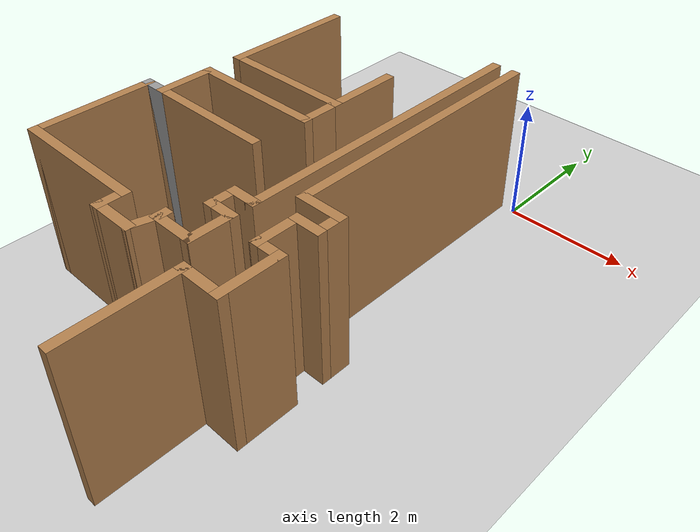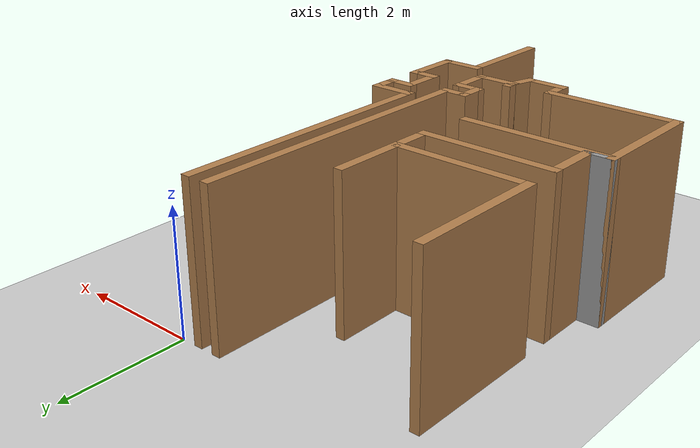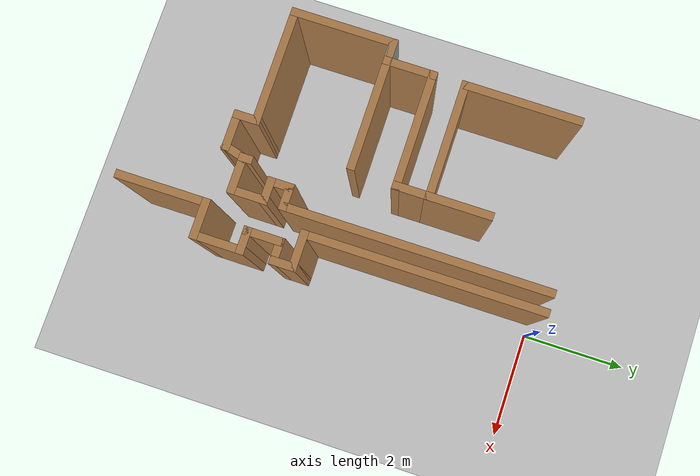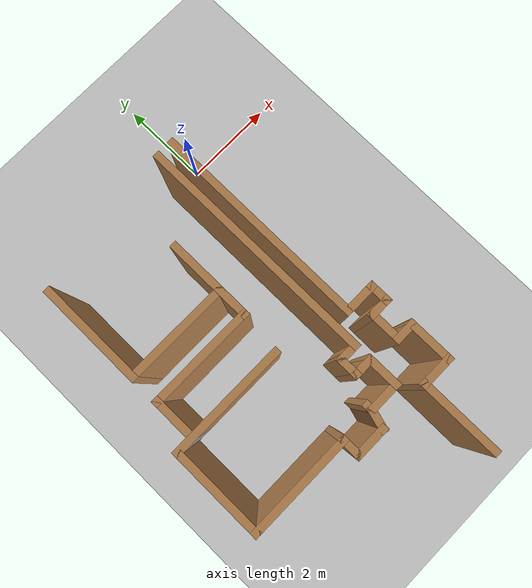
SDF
<sdf version="1.6">
 <world name="default">
  <model name="ground_plane">
   <static>1</static>
   <link name="link">
    <collision name="collision">
     <geometry><plane><normal>0 0 1</normal><size>100 100</size></plane></geometry>
     <surface><friction><ode><mu>100</mu><mu2>50</mu2></ode></friction></surface>
    </collision>
    <visual name="visual">
     <cast_shadows>0</cast_shadows>
     <geometry><plane><normal>0 0 1</normal><size>100 100</size></plane></geometry>
     <material>
      <script><uri>file://media/materials/scripts/gazebo.material</uri><name>Gazebo/Grey</name></script>
     </material>
    </visual>
   </link>
  </model>
  <model name="map_42">
   <link name="Wall_113">
    <pose>-2.425 -2.94031 0 0 -0 0</pose>
    <visual name="Wall_113_Visual">
     <pose>0 0 1.25 0 -0 0</pose>
     <geometry><box><size>2.5 0.15 2.5</size></box></geometry>
     <material>
      <script><uri>file://media/materials/scripts/gazebo.material</uri><name>Gazebo/Wood</name></script>
      <ambient>1 1 1 1</ambient>
      <shader type="pixel"/>
     </material>
     <meta><layer>0</layer></meta>
    </visual>
    <collision name="Wall_113_Collision">
     <pose>0 0 1.25 0 -0 0</pose>
     <geometry><box><size>2.5 0.15 2.5</size></box></geometry>
     <surface>
      <friction>
       <ode><mu>1</mu><mu2>1</mu2><fdir1>0 0 0</fdir1><slip1>0</slip1><slip2>0</slip2></ode>
       <torsional>
        <coefficient>1</coefficient>
        <patch_radius>0</patch_radius>
        <surface_radius>0</surface_radius>
        <use_patch_radius>1</use_patch_radius>
        <ode><slip>0</slip></ode>
       </torsional>
      </friction>
      <bounce><restitution_coefficient>0</restitution_coefficient><threshold>1e+06</threshold></bounce>
      <contact>
       <collide_without_contact>0</collide_without_contact>
       <collide_without_contact_bitmask>1</collide_without_contact_bitmask>
       <collide_bitmask>1</collide_bitmask>
       <ode>
        <soft_cfm>0</soft_cfm>
        <soft_erp>0.2</soft_erp>
        <kp>1e+13</kp>
        <kd>1</kd>
        <max_vel>0.01</max_vel>
        <min_depth>0</min_depth>
       </ode>
       <bullet>
        <split_impulse>1</split_impulse>
        <split_impulse_penetration_threshold>-0.01</split_impulse_penetration_threshold>
        <soft_cfm>0</soft_cfm>
        <soft_erp>0.2</soft_erp>
        <kp>1e+13</kp>
        <kd>1</kd>
       </bullet>
      </contact>
     </surface>
    </collision>
   </link>
   <link name="Wall_17">
    <pose>-3.25 -0.440313 0 0 0 -1.5708</pose>
    <visual name="Wall_17_Visual">
     <pose>0 0 1.25 0 -0 0</pose>
     <geometry><box><size>2.25 0.15 2.5</size></box></geometry>
     <material>
      <script><uri>file://media/materials/scripts/gazebo.material</uri><name>Gazebo/Wood</name></script>
      <ambient>1 1 1 1</ambient>
      <shader type="pixel"/>
     </material>
     <meta><layer>0</layer></meta>
    </visual>
    <collision name="Wall_17_Collision">
     <pose>0 0 1.25 0 -0 0</pose>
     <geometry><box><size>2.25 0.15 2.5</size></box></geometry>
     <surface>
      <friction>
       <ode><mu>1</mu><mu2>1</mu2><fdir1>0 0 0</fdir1><slip1>0</slip1><slip2>0</slip2></ode>
       <torsional>
        <coefficient>1</coefficient>
        <patch_radius>0</patch_radius>
        <surface_radius>0</surface_radius>
        <use_patch_radius>1</use_patch_radius>
        <ode><slip>0</slip></ode>
       </torsional>
      </friction>
      <bounce><restitution_coefficient>0</restitution_coefficient><threshold>1e+06</threshold></bounce>
      <contact>
       <collide_without_contact>0</collide_without_contact>
       <collide_without_contact_bitmask>1</collide_without_contact_bitmask>
       <collide_bitmask>1</collide_bitmask>
       <ode>
        <soft_cfm>0</soft_cfm>
        <soft_erp>0.2</soft_erp>
        <kp>1e+13</kp>
        <kd>1</kd>
        <max_vel>0.01</max_vel>
        <min_depth>0</min_depth>
       </ode>
       <bullet>
        <split_impulse>1</split_impulse>
        <split_impulse_penetration_threshold>-0.01</split_impulse_penetration_threshold>
        <soft_cfm>0</soft_cfm>
        <soft_erp>0.2</soft_erp>
        <kp>1e+13</kp>
        <kd>1</kd>
       </bullet>
      </contact>
     </surface>
    </collision>
   </link>
   <link name="Wall_18">
    <pose>-2.2 -1.49031 0 0 -0 0</pose>
    <visual name="Wall_18_Visual">
     <pose>0 0 1.25 0 -0 0</pose>
     <geometry><box><size>2.25 0.15 2.5</size></box></geometry>
     <material>
      <script><uri>file://media/materials/scripts/gazebo.material</uri><name>Gazebo/Wood</name></script>
      <ambient>1 1 1 1</ambient>
      <shader type="pixel"/>
     </material>
     <meta><layer>0</layer></meta>
    </visual>
    <collision name="Wall_18_Collision">
     <pose>0 0 1.25 0 -0 0</pose>
     <geometry><box><size>2.25 0.15 2.5</size></box></geometry>
     <surface>
      <friction>
       <ode><mu>1</mu><mu2>1</mu2><fdir1>0 0 0</fdir1><slip1>0</slip1><slip2>0</slip2></ode>
       <torsional>
        <coefficient>1</coefficient>
        <patch_radius>0</patch_radius>
        <surface_radius>0</surface_radius>
        <use_patch_radius>1</use_patch_radius>
        <ode><slip>0</slip></ode>
       </torsional>
      </friction>
      <bounce><restitution_coefficient>0</restitution_coefficient><threshold>1e+06</threshold></bounce>
      <contact>
       <collide_without_contact>0</collide_without_contact>
       <collide_without_contact_bitmask>1</collide_without_contact_bitmask>
       <collide_bitmask>1</collide_bitmask>
       <ode>
        <soft_cfm>0</soft_cfm>
        <soft_erp>0.2</soft_erp>
        <kp>1e+13</kp>
        <kd>1</kd>
        <max_vel>0.01</max_vel>
        <min_depth>0</min_depth>
       </ode>
       <bullet>
        <split_impulse>1</split_impulse>
        <split_impulse_penetration_threshold>-0.01</split_impulse_penetration_threshold>
        <soft_cfm>0</soft_cfm>
        <soft_erp>0.2</soft_erp>
        <kp>1e+13</kp>
        <kd>1</kd>
       </bullet>
      </contact>
     </surface>
    </collision>
   </link>
   <link name="Wall_19">
    <pose>-1.15 -0.940313 0 0 -0 1.5708</pose>
    <visual name="Wall_19_Visual">
     <pose>0 0 1.25 0 -0 0</pose>
     <geometry><box><size>1.25 0.15 2.5</size></box></geometry>
     <material>
      <script><uri>file://media/materials/scripts/gazebo.material</uri><name>Gazebo/Wood</name></script>
      <ambient>1 1 1 1</ambient>
      <shader type="pixel"/>
     </material>
     <meta><layer>0</layer></meta>
    </visual>
    <collision name="Wall_19_Collision">
     <pose>0 0 1.25 0 -0 0</pose>
     <geometry><box><size>1.25 0.15 2.5</size></box></geometry>
     <surface>
      <friction>
       <ode><mu>1</mu><mu2>1</mu2><fdir1>0 0 0</fdir1><slip1>0</slip1><slip2>0</slip2></ode>
       <torsional>
        <coefficient>1</coefficient>
        <patch_radius>0</patch_radius>
        <surface_radius>0</surface_radius>
        <use_patch_radius>1</use_patch_radius>
        <ode><slip>0</slip></ode>
       </torsional>
      </friction>
      <bounce><restitution_coefficient>0</restitution_coefficient><threshold>1e+06</threshold></bounce>
      <contact>
       <collide_without_contact>0</collide_without_contact>
       <collide_without_contact_bitmask>1</collide_without_contact_bitmask>
       <collide_bitmask>1</collide_bitmask>
       <ode>
        <soft_cfm>0</soft_cfm>
        <soft_erp>0.2</soft_erp>
        <kp>1e+13</kp>
        <kd>1</kd>
        <max_vel>0.01</max_vel>
        <min_depth>0</min_depth>
       </ode>
       <bullet>
        <split_impulse>1</split_impulse>
        <split_impulse_penetration_threshold>-0.01</split_impulse_penetration_threshold>
        <soft_cfm>0</soft_cfm>
        <soft_erp>0.2</soft_erp>
        <kp>1e+13</kp>
        <kd>1</kd>
       </bullet>
      </contact>
     </surface>
    </collision>
   </link>
   <link name="Wall_21">
    <pose>-1.15 -1.79031 0 0 0 -1.5708</pose>
    <visual name="Wall_21_Visual">
     <pose>0 0 1.25 0 -0 0</pose>
     <geometry><box><size>0.75 0.15 2.5</size></box></geometry>
     <material>
      <script><uri>file://media/materials/scripts/gazebo.material</uri><name>Gazebo/Wood</name></script>
      <ambient>1 1 1 1</ambient>
      <shader type="pixel"/>
     </material>
     <meta><layer>0</layer></meta>
    </visual>
    <collision name="Wall_21_Collision">
     <pose>0 0 1.25 0 -0 0</pose>
     <geometry><box><size>0.75 0.15 2.5</size></box></geometry>
     <surface>
      <friction>
       <ode><mu>1</mu><mu2>1</mu2><fdir1>0 0 0</fdir1><slip1>0</slip1><slip2>0</slip2></ode>
       <torsional>
        <coefficient>1</coefficient>
        <patch_radius>0</patch_radius>
        <surface_radius>0</surface_radius>
        <use_patch_radius>1</use_patch_radius>
        <ode><slip>0</slip></ode>
       </torsional>
      </friction>
      <bounce><restitution_coefficient>0</restitution_coefficient><threshold>1e+06</threshold></bounce>
      <contact>
       <collide_without_contact>0</collide_without_contact>
       <collide_without_contact_bitmask>1</collide_without_contact_bitmask>
       <collide_bitmask>1</collide_bitmask>
       <ode>
        <soft_cfm>0</soft_cfm>
        <soft_erp>0.2</soft_erp>
        <kp>1e+13</kp>
        <kd>1</kd>
        <max_vel>0.01</max_vel>
        <min_depth>0</min_depth>
       </ode>
       <bullet>
        <split_impulse>1</split_impulse>
        <split_impulse_penetration_threshold>-0.01</split_impulse_penetration_threshold>
        <soft_cfm>0</soft_cfm>
        <soft_erp>0.2</soft_erp>
        <kp>1e+13</kp>
        <kd>1</kd>
       </bullet>
      </contact>
     </surface>
    </collision>
   </link>
   <link name="Wall_22">
    <pose>-2.2 -2.09031 0 0 -0 3.14159</pose>
    <visual name="Wall_22_Visual">
     <pose>0 0 1.25 0 -0 0</pose>
     <geometry><box><size>2.25 0.15 2.5</size></box></geometry>
     <material>
      <script><uri>file://media/materials/scripts/gazebo.material</uri><name>Gazebo/Wood</name></script>
      <ambient>1 1 1 1</ambient>
      <shader type="pixel"/>
     </material>
     <meta><layer>0</layer></meta>
    </visual>
    <collision name="Wall_22_Collision">
     <pose>0 0 1.25 0 -0 0</pose>
     <geometry><box><size>2.25 0.15 2.5</size></box></geometry>
     <surface>
      <friction>
       <ode><mu>1</mu><mu2>1</mu2><fdir1>0 0 0</fdir1><slip1>0</slip1><slip2>0</slip2></ode>
       <torsional>
        <coefficient>1</coefficient>
        <patch_radius>0</patch_radius>
        <surface_radius>0</surface_radius>
        <use_patch_radius>1</use_patch_radius>
        <ode><slip>0</slip></ode>
       </torsional>
      </friction>
      <bounce><restitution_coefficient>0</restitution_coefficient><threshold>1e+06</threshold></bounce>
      <contact>
       <collide_without_contact>0</collide_without_contact>
       <collide_without_contact_bitmask>1</collide_without_contact_bitmask>
       <collide_bitmask>1</collide_bitmask>
       <ode>
        <soft_cfm>0</soft_cfm>
        <soft_erp>0.2</soft_erp>
        <kp>1e+13</kp>
        <kd>1</kd>
        <max_vel>0.01</max_vel>
        <min_depth>0</min_depth>
       </ode>
       <bullet>
        <split_impulse>1</split_impulse>
        <split_impulse_penetration_threshold>-0.01</split_impulse_penetration_threshold>
        <soft_cfm>0</soft_cfm>
        <soft_erp>0.2</soft_erp>
        <kp>1e+13</kp>
        <kd>1</kd>
       </bullet>
      </contact>
     </surface>
    </collision>
   </link>
   <link name="Wall_23">
    <pose>-3.25 -2.51531 0 0 0 -1.5708</pose>
    <visual name="Wall_23_Visual">
     <pose>0 0 1.25 0 -0 0</pose>
     <geometry><box><size>1 0.15 2.5</size></box></geometry>
     <material>
      <script><uri>file://media/materials/scripts/gazebo.material</uri><name>Gazebo/Wood</name></script>
      <ambient>1 1 1 1</ambient>
      <shader type="pixel"/>
     </material>
     <meta><layer>0</layer></meta>
    </visual>
    <collision name="Wall_23_Collision">
     <pose>0 0 1.25 0 -0 0</pose>
     <geometry><box><size>1 0.15 2.5</size></box></geometry>
     <surface>
      <friction>
       <ode><mu>1</mu><mu2>1</mu2><fdir1>0 0 0</fdir1><slip1>0</slip1><slip2>0</slip2></ode>
       <torsional>
        <coefficient>1</coefficient>
        <patch_radius>0</patch_radius>
        <surface_radius>0</surface_radius>
        <use_patch_radius>1</use_patch_radius>
        <ode><slip>0</slip></ode>
       </torsional>
      </friction>
      <bounce><restitution_coefficient>0</restitution_coefficient><threshold>1e+06</threshold></bounce>
      <contact>
       <collide_without_contact>0</collide_without_contact>
       <collide_without_contact_bitmask>1</collide_without_contact_bitmask>
       <collide_bitmask>1</collide_bitmask>
       <ode>
        <soft_cfm>0</soft_cfm>
        <soft_erp>0.2</soft_erp>
        <kp>1e+13</kp>
        <kd>1</kd>
        <max_vel>0.01</max_vel>
        <min_depth>0</min_depth>
       </ode>
       <bullet>
        <split_impulse>1</split_impulse>
        <split_impulse_penetration_threshold>-0.01</split_impulse_penetration_threshold>
        <soft_cfm>0</soft_cfm>
        <soft_erp>0.2</soft_erp>
        <kp>1e+13</kp>
        <kd>1</kd>
       </bullet>
      </contact>
     </surface>
    </collision>
   </link>
   <link name="Wall_33">
    <pose>-0.8 -4.74031 0 0 -0 1.5708</pose>
    <visual name="Wall_33_Visual">
     <pose>0 0 1.25 0 -0 0</pose>
     <geometry><box><size>0.25 0.15 2.5</size></box></geometry>
     <material>
      <script><uri>file://media/materials/scripts/gazebo.material</uri><name>Gazebo/Wood</name></script>
      <ambient>1 1 1 1</ambient>
      <shader type="pixel"/>
     </material>
     <meta><layer>0</layer></meta>
    </visual>
    <collision name="Wall_33_Collision">
     <pose>0 0 1.25 0 -0 0</pose>
     <geometry><box><size>0.25 0.15 2.5</size></box></geometry>
     <surface>
      <friction>
       <ode><mu>1</mu><mu2>1</mu2><fdir1>0 0 0</fdir1><slip1>0</slip1><slip2>0</slip2></ode>
       <torsional>
        <coefficient>1</coefficient>
        <patch_radius>0</patch_radius>
        <surface_radius>0</surface_radius>
        <use_patch_radius>1</use_patch_radius>
        <ode><slip>0</slip></ode>
       </torsional>
      </friction>
      <bounce><restitution_coefficient>0</restitution_coefficient><threshold>1e+06</threshold></bounce>
      <contact>
       <collide_without_contact>0</collide_without_contact>
       <collide_without_contact_bitmask>1</collide_without_contact_bitmask>
       <collide_bitmask>1</collide_bitmask>
       <ode>
        <soft_cfm>0</soft_cfm>
        <soft_erp>0.2</soft_erp>
        <kp>1e+13</kp>
        <kd>1</kd>
        <max_vel>0.01</max_vel>
        <min_depth>0</min_depth>
       </ode>
       <bullet>
        <split_impulse>1</split_impulse>
        <split_impulse_penetration_threshold>-0.01</split_impulse_penetration_threshold>
        <soft_cfm>0</soft_cfm>
        <soft_erp>0.2</soft_erp>
        <kp>1e+13</kp>
        <kd>1</kd>
       </bullet>
      </contact>
     </surface>
    </collision>
   </link>
   <link name="Wall_35">
    <pose>-3.425 -2.94031 0 0 -0 3.14159</pose>
    <visual name="Wall_35_Visual">
     <pose>0 0 1.25 0 -0 0</pose>
     <geometry><box><size>0.5 0.15 2.5</size></box></geometry>
     <material>
      <script><uri>file://media/materials/scripts/gazebo.material</uri><name>Gazebo/Grey</name></script>
      <ambient>1 1 1 1</ambient>
      <shader type="pixel"/>
     </material>
     <meta><layer>0</layer></meta>
    </visual>
    <collision name="Wall_35_Collision">
     <pose>0 0 1.25 0 -0 0</pose>
     <geometry><box><size>0.5 0.15 2.5</size></box></geometry>
     <surface>
      <friction>
       <ode><mu>1</mu><mu2>1</mu2><fdir1>0 0 0</fdir1><slip1>0</slip1><slip2>0</slip2></ode>
       <torsional>
        <coefficient>1</coefficient>
        <patch_radius>0</patch_radius>
        <surface_radius>0</surface_radius>
        <use_patch_radius>1</use_patch_radius>
        <ode><slip>0</slip></ode>
       </torsional>
      </friction>
      <bounce><restitution_coefficient>0</restitution_coefficient><threshold>1e+06</threshold></bounce>
      <contact>
       <collide_without_contact>0</collide_without_contact>
       <collide_without_contact_bitmask>1</collide_without_contact_bitmask>
       <collide_bitmask>1</collide_bitmask>
       <ode>
        <soft_cfm>0</soft_cfm>
        <soft_erp>0.2</soft_erp>
        <kp>1e+13</kp>
        <kd>1</kd>
        <max_vel>0.01</max_vel>
        <min_depth>0</min_depth>
       </ode>
       <bullet>
        <split_impulse>1</split_impulse>
        <split_impulse_penetration_threshold>-0.01</split_impulse_penetration_threshold>
        <soft_cfm>0</soft_cfm>
        <soft_erp>0.2</soft_erp>
        <kp>1e+13</kp>
        <kd>1</kd>
       </bullet>
      </contact>
     </surface>
    </collision>
   </link>
   <link name="Wall_36">
    <pose>-3.6 -3.86531 0 0 0 -1.5708</pose>
    <visual name="Wall_36_Visual">
     <pose>0 0 1.25 0 -0 0</pose>
     <geometry><box><size>2 0.15 2.5</size></box></geometry>
     <material>
      <script><uri>file://media/materials/scripts/gazebo.material</uri><name>Gazebo/Wood</name></script>
      <ambient>1 1 1 1</ambient>
      <shader type="pixel"/>
     </material>
     <meta><layer>0</layer></meta>
    </visual>
    <collision name="Wall_36_Collision">
     <pose>0 0 1.25 0 -0 0</pose>
     <geometry><box><size>2 0.15 2.5</size></box></geometry>
     <surface>
      <friction>
       <ode><mu>1</mu><mu2>1</mu2><fdir1>0 0 0</fdir1><slip1>0</slip1><slip2>0</slip2></ode>
       <torsional>
        <coefficient>1</coefficient>
        <patch_radius>0</patch_radius>
        <surface_radius>0</surface_radius>
        <use_patch_radius>1</use_patch_radius>
        <ode><slip>0</slip></ode>
       </torsional>
      </friction>
      <bounce><restitution_coefficient>0</restitution_coefficient><threshold>1e+06</threshold></bounce>
      <contact>
       <collide_without_contact>0</collide_without_contact>
       <collide_without_contact_bitmask>1</collide_without_contact_bitmask>
       <collide_bitmask>1</collide_bitmask>
       <ode>
        <soft_cfm>0</soft_cfm>
        <soft_erp>0.2</soft_erp>
        <kp>1e+13</kp>
        <kd>1</kd>
        <max_vel>0.01</max_vel>
        <min_depth>0</min_depth>
       </ode>
       <bullet>
        <split_impulse>1</split_impulse>
        <split_impulse_penetration_threshold>-0.01</split_impulse_penetration_threshold>
        <soft_cfm>0</soft_cfm>
        <soft_erp>0.2</soft_erp>
        <kp>1e+13</kp>
        <kd>1</kd>
       </bullet>
      </contact>
     </surface>
    </collision>
   </link>
   <link name="Wall_37">
    <pose>-2.55 -4.79031 0 0 -0 0</pose>
    <visual name="Wall_37_Visual">
     <pose>0 0 1.25 0 -0 0</pose>
     <geometry><box><size>2.25 0.15 2.5</size></box></geometry>
     <material>
      <script><uri>file://media/materials/scripts/gazebo.material</uri><name>Gazebo/Wood</name></script>
      <ambient>1 1 1 1</ambient>
      <shader type="pixel"/>
     </material>
     <meta><layer>0</layer></meta>
    </visual>
    <collision name="Wall_37_Collision">
     <pose>0 0 1.25 0 -0 0</pose>
     <geometry><box><size>2.25 0.15 2.5</size></box></geometry>
     <surface>
      <friction>
       <ode><mu>1</mu><mu2>1</mu2><fdir1>0 0 0</fdir1><slip1>0</slip1><slip2>0</slip2></ode>
       <torsional>
        <coefficient>1</coefficient>
        <patch_radius>0</patch_radius>
        <surface_radius>0</surface_radius>
        <use_patch_radius>1</use_patch_radius>
        <ode><slip>0</slip></ode>
       </torsional>
      </friction>
      <bounce><restitution_coefficient>0</restitution_coefficient><threshold>1e+06</threshold></bounce>
      <contact>
       <collide_without_contact>0</collide_without_contact>
       <collide_without_contact_bitmask>1</collide_without_contact_bitmask>
       <collide_bitmask>1</collide_bitmask>
       <ode>
        <soft_cfm>0</soft_cfm>
        <soft_erp>0.2</soft_erp>
        <kp>1e+13</kp>
        <kd>1</kd>
        <max_vel>0.01</max_vel>
        <min_depth>0</min_depth>
       </ode>
       <bullet>
        <split_impulse>1</split_impulse>
        <split_impulse_penetration_threshold>-0.01</split_impulse_penetration_threshold>
        <soft_cfm>0</soft_cfm>
        <soft_erp>0.2</soft_erp>
        <kp>1e+13</kp>
        <kd>1</kd>
       </bullet>
      </contact>
     </surface>
    </collision>
   </link>
   <link name="Wall_38">
    <pose>-1.5 -4.96531 0 0 0 -1.5708</pose>
    <visual name="Wall_38_Visual">
     <pose>0 0 1.25 0 -0 0</pose>
     <geometry><box><size>0.5 0.15 2.5</size></box></geometry>
     <material>
      <script><uri>file://media/materials/scripts/gazebo.material</uri><name>Gazebo/Wood</name></script>
      <ambient>1 1 1 1</ambient>
      <shader type="pixel"/>
     </material>
     <meta><layer>0</layer></meta>
    </visual>
    <collision name="Wall_38_Collision">
     <pose>0 0 1.25 0 -0 0</pose>
     <geometry><box><size>0.5 0.15 2.5</size></box></geometry>
     <surface>
      <friction>
       <ode><mu>1</mu><mu2>1</mu2><fdir1>0 0 0</fdir1><slip1>0</slip1><slip2>0</slip2></ode>
       <torsional>
        <coefficient>1</coefficient>
        <patch_radius>0</patch_radius>
        <surface_radius>0</surface_radius>
        <use_patch_radius>1</use_patch_radius>
        <ode><slip>0</slip></ode>
       </torsional>
      </friction>
      <bounce><restitution_coefficient>0</restitution_coefficient><threshold>1e+06</threshold></bounce>
      <contact>
       <collide_without_contact>0</collide_without_contact>
       <collide_without_contact_bitmask>1</collide_without_contact_bitmask>
       <collide_bitmask>1</collide_bitmask>
       <ode>
        <soft_cfm>0</soft_cfm>
        <soft_erp>0.2</soft_erp>
        <kp>1e+13</kp>
        <kd>1</kd>
        <max_vel>0.01</max_vel>
        <min_depth>0</min_depth>
       </ode>
       <bullet>
        <split_impulse>1</split_impulse>
        <split_impulse_penetration_threshold>-0.01</split_impulse_penetration_threshold>
        <soft_cfm>0</soft_cfm>
        <soft_erp>0.2</soft_erp>
        <kp>1e+13</kp>
        <kd>1</kd>
       </bullet>
      </contact>
     </surface>
    </collision>
   </link>
   <link name="Wall_39">
    <pose>-1.2 -5.14031 0 0 -0 0</pose>
    <visual name="Wall_39_Visual">
     <pose>0 0 1.25 0 -0 0</pose>
     <geometry><box><size>0.75 0.15 2.5</size></box></geometry>
     <material>
      <script><uri>file://media/materials/scripts/gazebo.material</uri><name>Gazebo/Wood</name></script>
      <ambient>1 1 1 1</ambient>
      <shader type="pixel"/>
     </material>
     <meta><layer>0</layer></meta>
    </visual>
    <collision name="Wall_39_Collision">
     <pose>0 0 1.25 0 -0 0</pose>
     <geometry><box><size>0.75 0.15 2.5</size></box></geometry>
     <surface>
      <friction>
       <ode><mu>1</mu><mu2>1</mu2><fdir1>0 0 0</fdir1><slip1>0</slip1><slip2>0</slip2></ode>
       <torsional>
        <coefficient>1</coefficient>
        <patch_radius>0</patch_radius>
        <surface_radius>0</surface_radius>
        <use_patch_radius>1</use_patch_radius>
        <ode><slip>0</slip></ode>
       </torsional>
      </friction>
      <bounce><restitution_coefficient>0</restitution_coefficient><threshold>1e+06</threshold></bounce>
      <contact>
       <collide_without_contact>0</collide_without_contact>
       <collide_without_contact_bitmask>1</collide_without_contact_bitmask>
       <collide_bitmask>1</collide_bitmask>
       <ode>
        <soft_cfm>0</soft_cfm>
        <soft_erp>0.2</soft_erp>
        <kp>1e+13</kp>
        <kd>1</kd>
        <max_vel>0.01</max_vel>
        <min_depth>0</min_depth>
       </ode>
       <bullet>
        <split_impulse>1</split_impulse>
        <split_impulse_penetration_threshold>-0.01</split_impulse_penetration_threshold>
        <soft_cfm>0</soft_cfm>
        <soft_erp>0.2</soft_erp>
        <kp>1e+13</kp>
        <kd>1</kd>
       </bullet>
      </contact>
     </surface>
    </collision>
   </link>
   <link name="Wall_42">
    <pose>-0.85 -4.96531 0 0 -0 1.2925</pose>
    <visual name="Wall_42_Visual">
     <pose>0 0 1.25 0 -0 0</pose>
     <geometry><box><size>0.514005 0.15 2.5</size></box></geometry>
     <material>
      <script><uri>file://media/materials/scripts/gazebo.material</uri><name>Gazebo/Wood</name></script>
      <ambient>1 1 1 1</ambient>
      <shader type="pixel"/>
     </material>
     <meta><layer>0</layer></meta>
    </visual>
    <collision name="Wall_42_Collision">
     <pose>0 0 1.25 0 -0 0</pose>
     <geometry><box><size>0.514005 0.15 2.5</size></box></geometry>
     <surface>
      <friction>
       <ode><mu>1</mu><mu2>1</mu2><fdir1>0 0 0</fdir1><slip1>0</slip1><slip2>0</slip2></ode>
       <torsional>
        <coefficient>1</coefficient>
        <patch_radius>0</patch_radius>
        <surface_radius>0</surface_radius>
        <use_patch_radius>1</use_patch_radius>
        <ode><slip>0</slip></ode>
       </torsional>
      </friction>
      <bounce><restitution_coefficient>0</restitution_coefficient><threshold>1e+06</threshold></bounce>
      <contact>
       <collide_without_contact>0</collide_without_contact>
       <collide_without_contact_bitmask>1</collide_without_contact_bitmask>
       <collide_bitmask>1</collide_bitmask>
       <ode>
        <soft_cfm>0</soft_cfm>
        <soft_erp>0.2</soft_erp>
        <kp>1e+13</kp>
        <kd>1</kd>
        <max_vel>0.01</max_vel>
        <min_depth>0</min_depth>
       </ode>
       <bullet>
        <split_impulse>1</split_impulse>
        <split_impulse_penetration_threshold>-0.01</split_impulse_penetration_threshold>
        <soft_cfm>0</soft_cfm>
        <soft_erp>0.2</soft_erp>
        <kp>1e+13</kp>
        <kd>1</kd>
       </bullet>
      </contact>
     </surface>
    </collision>
   </link>
   <link name="Wall_43">
    <pose>-0.5 -4.79031 0 0 -0 0</pose>
    <visual name="Wall_43_Visual">
     <pose>0 0 1.25 0 -0 0</pose>
     <geometry><box><size>0.75 0.15 2.5</size></box></geometry>
     <material>
      <script><uri>file://media/materials/scripts/gazebo.material</uri><name>Gazebo/Wood</name></script>
      <ambient>1 1 1 1</ambient>
      <shader type="pixel"/>
     </material>
     <meta><layer>0</layer></meta>
    </visual>
    <collision name="Wall_43_Collision">
     <pose>0 0 1.25 0 -0 0</pose>
     <geometry><box><size>0.75 0.15 2.5</size></box></geometry>
     <surface>
      <friction>
       <ode><mu>1</mu><mu2>1</mu2><fdir1>0 0 0</fdir1><slip1>0</slip1><slip2>0</slip2></ode>
       <torsional>
        <coefficient>1</coefficient>
        <patch_radius>0</patch_radius>
        <surface_radius>0</surface_radius>
        <use_patch_radius>1</use_patch_radius>
        <ode><slip>0</slip></ode>
       </torsional>
      </friction>
      <bounce><restitution_coefficient>0</restitution_coefficient><threshold>1e+06</threshold></bounce>
      <contact>
       <collide_without_contact>0</collide_without_contact>
       <collide_without_contact_bitmask>1</collide_without_contact_bitmask>
       <collide_bitmask>1</collide_bitmask>
       <ode>
        <soft_cfm>0</soft_cfm>
        <soft_erp>0.2</soft_erp>
        <kp>1e+13</kp>
        <kd>1</kd>
        <max_vel>0.01</max_vel>
        <min_depth>0</min_depth>
       </ode>
       <bullet>
        <split_impulse>1</split_impulse>
        <split_impulse_penetration_threshold>-0.01</split_impulse_penetration_threshold>
        <soft_cfm>0</soft_cfm>
        <soft_erp>0.2</soft_erp>
        <kp>1e+13</kp>
        <kd>1</kd>
       </bullet>
      </contact>
     </surface>
    </collision>
   </link>
   <link name="Wall_46">
    <pose>-0.2 -4.49031 0 0 -0 1.5708</pose>
    <visual name="Wall_46_Visual">
     <pose>0 0 1.25 0 -0 0</pose>
     <geometry><box><size>0.75 0.15 2.5</size></box></geometry>
     <material>
      <script><uri>file://media/materials/scripts/gazebo.material</uri><name>Gazebo/Wood</name></script>
      <ambient>1 1 1 1</ambient>
      <shader type="pixel"/>
     </material>
     <meta><layer>0</layer></meta>
    </visual>
    <collision name="Wall_46_Collision">
     <pose>0 0 1.25 0 -0 0</pose>
     <geometry><box><size>0.75 0.15 2.5</size></box></geometry>
     <surface>
      <friction>
       <ode><mu>1</mu><mu2>1</mu2><fdir1>0 0 0</fdir1><slip1>0</slip1><slip2>0</slip2></ode>
       <torsional>
        <coefficient>1</coefficient>
        <patch_radius>0</patch_radius>
        <surface_radius>0</surface_radius>
        <use_patch_radius>1</use_patch_radius>
        <ode><slip>0</slip></ode>
       </torsional>
      </friction>
      <bounce><restitution_coefficient>0</restitution_coefficient><threshold>1e+06</threshold></bounce>
      <contact>
       <collide_without_contact>0</collide_without_contact>
       <collide_without_contact_bitmask>1</collide_without_contact_bitmask>
       <collide_bitmask>1</collide_bitmask>
       <ode>
        <soft_cfm>0</soft_cfm>
        <soft_erp>0.2</soft_erp>
        <kp>1e+13</kp>
        <kd>1</kd>
        <max_vel>0.01</max_vel>
        <min_depth>0</min_depth>
       </ode>
       <bullet>
        <split_impulse>1</split_impulse>
        <split_impulse_penetration_threshold>-0.01</split_impulse_penetration_threshold>
        <soft_cfm>0</soft_cfm>
        <soft_erp>0.2</soft_erp>
        <kp>1e+13</kp>
        <kd>1</kd>
       </bullet>
      </contact>
     </surface>
    </collision>
   </link>
   <link name="Wall_47">
    <pose>-0.375 -4.19031 0 0 -0 3.14159</pose>
    <visual name="Wall_47_Visual">
     <pose>0 0 1.25 0 -0 0</pose>
     <geometry><box><size>0.5 0.15 2.5</size></box></geometry>
     <material>
      <script><uri>file://media/materials/scripts/gazebo.material</uri><name>Gazebo/Wood</name></script>
      <ambient>1 1 1 1</ambient>
      <shader type="pixel"/>
     </material>
     <meta><layer>0</layer></meta>
    </visual>
    <collision name="Wall_47_Collision">
     <pose>0 0 1.25 0 -0 0</pose>
     <geometry><box><size>0.5 0.15 2.5</size></box></geometry>
     <surface>
      <friction>
       <ode><mu>1</mu><mu2>1</mu2><fdir1>0 0 0</fdir1><slip1>0</slip1><slip2>0</slip2></ode>
       <torsional>
        <coefficient>1</coefficient>
        <patch_radius>0</patch_radius>
        <surface_radius>0</surface_radius>
        <use_patch_radius>1</use_patch_radius>
        <ode><slip>0</slip></ode>
       </torsional>
      </friction>
      <bounce><restitution_coefficient>0</restitution_coefficient><threshold>1e+06</threshold></bounce>
      <contact>
       <collide_without_contact>0</collide_without_contact>
       <collide_without_contact_bitmask>1</collide_without_contact_bitmask>
       <collide_bitmask>1</collide_bitmask>
       <ode>
        <soft_cfm>0</soft_cfm>
        <soft_erp>0.2</soft_erp>
        <kp>1e+13</kp>
        <kd>1</kd>
        <max_vel>0.01</max_vel>
        <min_depth>0</min_depth>
       </ode>
       <bullet>
        <split_impulse>1</split_impulse>
        <split_impulse_penetration_threshold>-0.01</split_impulse_penetration_threshold>
        <soft_cfm>0</soft_cfm>
        <soft_erp>0.2</soft_erp>
        <kp>1e+13</kp>
        <kd>1</kd>
       </bullet>
      </contact>
     </surface>
    </collision>
   </link>
   <link name="Wall_48">
    <pose>-0.55 -4.01531 0 0 -0 1.5708</pose>
    <visual name="Wall_48_Visual">
     <pose>0 0 1.25 0 -0 0</pose>
     <geometry><box><size>0.5 0.15 2.5</size></box></geometry>
     <material>
      <script><uri>file://media/materials/scripts/gazebo.material</uri><name>Gazebo/Wood</name></script>
      <ambient>1 1 1 1</ambient>
      <shader type="pixel"/>
     </material>
     <meta><layer>0</layer></meta>
    </visual>
    <collision name="Wall_48_Collision">
     <pose>0 0 1.25 0 -0 0</pose>
     <geometry><box><size>0.5 0.15 2.5</size></box></geometry>
     <surface>
      <friction>
       <ode><mu>1</mu><mu2>1</mu2><fdir1>0 0 0</fdir1><slip1>0</slip1><slip2>0</slip2></ode>
       <torsional>
        <coefficient>1</coefficient>
        <patch_radius>0</patch_radius>
        <surface_radius>0</surface_radius>
        <use_patch_radius>1</use_patch_radius>
        <ode><slip>0</slip></ode>
       </torsional>
      </friction>
      <bounce><restitution_coefficient>0</restitution_coefficient><threshold>1e+06</threshold></bounce>
      <contact>
       <collide_without_contact>0</collide_without_contact>
       <collide_without_contact_bitmask>1</collide_without_contact_bitmask>
       <collide_bitmask>1</collide_bitmask>
       <ode>
        <soft_cfm>0</soft_cfm>
        <soft_erp>0.2</soft_erp>
        <kp>1e+13</kp>
        <kd>1</kd>
        <max_vel>0.01</max_vel>
        <min_depth>0</min_depth>
       </ode>
       <bullet>
        <split_impulse>1</split_impulse>
        <split_impulse_penetration_threshold>-0.01</split_impulse_penetration_threshold>
        <soft_cfm>0</soft_cfm>
        <soft_erp>0.2</soft_erp>
        <kp>1e+13</kp>
        <kd>1</kd>
       </bullet>
      </contact>
     </surface>
    </collision>
   </link>
   <link name="Wall_49">
    <pose>-0.375 -3.84031 0 0 -0 0</pose>
    <visual name="Wall_49_Visual">
     <pose>0 0 1.25 0 -0 0</pose>
     <geometry><box><size>0.5 0.15 2.5</size></box></geometry>
     <material>
      <script><uri>file://media/materials/scripts/gazebo.material</uri><name>Gazebo/Wood</name></script>
      <ambient>1 1 1 1</ambient>
      <shader type="pixel"/>
     </material>
     <meta><layer>0</layer></meta>
    </visual>
    <collision name="Wall_49_Collision">
     <pose>0 0 1.25 0 -0 0</pose>
     <geometry><box><size>0.5 0.15 2.5</size></box></geometry>
     <surface>
      <friction>
       <ode><mu>1</mu><mu2>1</mu2><fdir1>0 0 0</fdir1><slip1>0</slip1><slip2>0</slip2></ode>
       <torsional>
        <coefficient>1</coefficient>
        <patch_radius>0</patch_radius>
        <surface_radius>0</surface_radius>
        <use_patch_radius>1</use_patch_radius>
        <ode><slip>0</slip></ode>
       </torsional>
      </friction>
      <bounce><restitution_coefficient>0</restitution_coefficient><threshold>1e+06</threshold></bounce>
      <contact>
       <collide_without_contact>0</collide_without_contact>
       <collide_without_contact_bitmask>1</collide_without_contact_bitmask>
       <collide_bitmask>1</collide_bitmask>
       <ode>
        <soft_cfm>0</soft_cfm>
        <soft_erp>0.2</soft_erp>
        <kp>1e+13</kp>
        <kd>1</kd>
        <max_vel>0.01</max_vel>
        <min_depth>0</min_depth>
       </ode>
       <bullet>
        <split_impulse>1</split_impulse>
        <split_impulse_penetration_threshold>-0.01</split_impulse_penetration_threshold>
        <soft_cfm>0</soft_cfm>
        <soft_erp>0.2</soft_erp>
        <kp>1e+13</kp>
        <kd>1</kd>
       </bullet>
      </contact>
     </surface>
    </collision>
   </link>
   <link name="Wall_50">
    <pose>-0.2 -1.41531 0 0 -0 1.5708</pose>
    <visual name="Wall_50_Visual">
     <pose>0 0 1.25 0 -0 0</pose>
     <geometry><box><size>5 0.15 2.5</size></box></geometry>
     <material>
      <script><uri>file://media/materials/scripts/gazebo.material</uri><name>Gazebo/Wood</name></script>
      <ambient>1 1 1 1</ambient>
      <shader type="pixel"/>
     </material>
     <meta><layer>0</layer></meta>
    </visual>
    <collision name="Wall_50_Collision">
     <pose>0 0 1.25 0 -0 0</pose>
     <geometry><box><size>5 0.15 2.5</size></box></geometry>
     <surface>
      <friction>
       <ode><mu>1</mu><mu2>1</mu2><fdir1>0 0 0</fdir1><slip1>0</slip1><slip2>0</slip2></ode>
       <torsional>
        <coefficient>1</coefficient>
        <patch_radius>0</patch_radius>
        <surface_radius>0</surface_radius>
        <use_patch_radius>1</use_patch_radius>
        <ode><slip>0</slip></ode>
       </torsional>
      </friction>
      <bounce><restitution_coefficient>0</restitution_coefficient><threshold>1e+06</threshold></bounce>
      <contact>
       <collide_without_contact>0</collide_without_contact>
       <collide_without_contact_bitmask>1</collide_without_contact_bitmask>
       <collide_bitmask>1</collide_bitmask>
       <ode>
        <soft_cfm>0</soft_cfm>
        <soft_erp>0.2</soft_erp>
        <kp>1e+13</kp>
        <kd>1</kd>
        <max_vel>0.01</max_vel>
        <min_depth>0</min_depth>
       </ode>
       <bullet>
        <split_impulse>1</split_impulse>
        <split_impulse_penetration_threshold>-0.01</split_impulse_penetration_threshold>
        <soft_cfm>0</soft_cfm>
        <soft_erp>0.2</soft_erp>
        <kp>1e+13</kp>
        <kd>1</kd>
       </bullet>
      </contact>
     </surface>
    </collision>
   </link>
   <link name="Wall_52">
    <pose>0.15 -1.16531 0 0 0 -1.5708</pose>
    <visual name="Wall_52_Visual">
     <pose>0 0 1.25 0 -0 0</pose>
     <geometry><box><size>4.5 0.15 2.5</size></box></geometry>
     <material>
      <script><uri>file://media/materials/scripts/gazebo.material</uri><name>Gazebo/Wood</name></script>
      <ambient>1 1 1 1</ambient>
      <shader type="pixel"/>
     </material>
     <meta><layer>0</layer></meta>
    </visual>
    <collision name="Wall_52_Collision">
     <pose>0 0 1.25 0 -0 0</pose>
     <geometry><box><size>4.5 0.15 2.5</size></box></geometry>
     <surface>
      <friction>
       <ode><mu>1</mu><mu2>1</mu2><fdir1>0 0 0</fdir1><slip1>0</slip1><slip2>0</slip2></ode>
       <torsional>
        <coefficient>1</coefficient>
        <patch_radius>0</patch_radius>
        <surface_radius>0</surface_radius>
        <use_patch_radius>1</use_patch_radius>
        <ode><slip>0</slip></ode>
       </torsional>
      </friction>
      <bounce><restitution_coefficient>0</restitution_coefficient><threshold>1e+06</threshold></bounce>
      <contact>
       <collide_without_contact>0</collide_without_contact>
       <collide_without_contact_bitmask>1</collide_without_contact_bitmask>
       <collide_bitmask>1</collide_bitmask>
       <ode>
        <soft_cfm>0</soft_cfm>
        <soft_erp>0.2</soft_erp>
        <kp>1e+13</kp>
        <kd>1</kd>
        <max_vel>0.01</max_vel>
        <min_depth>0</min_depth>
       </ode>
       <bullet>
        <split_impulse>1</split_impulse>
        <split_impulse_penetration_threshold>-0.01</split_impulse_penetration_threshold>
        <soft_cfm>0</soft_cfm>
        <soft_erp>0.2</soft_erp>
        <kp>1e+13</kp>
        <kd>1</kd>
       </bullet>
      </contact>
     </surface>
    </collision>
   </link>
   <link name="Wall_53">
    <pose>0.45 -3.34031 0 0 -0 0</pose>
    <visual name="Wall_53_Visual">
     <pose>0 0 1.25 0 -0 0</pose>
     <geometry><box><size>0.75 0.15 2.5</size></box></geometry>
     <material>
      <script><uri>file://media/materials/scripts/gazebo.material</uri><name>Gazebo/Wood</name></script>
      <ambient>1 1 1 1</ambient>
      <shader type="pixel"/>
     </material>
     <meta><layer>0</layer></meta>
    </visual>
    <collision name="Wall_53_Collision">
     <pose>0 0 1.25 0 -0 0</pose>
     <geometry><box><size>0.75 0.15 2.5</size></box></geometry>
     <surface>
      <friction>
       <ode><mu>1</mu><mu2>1</mu2><fdir1>0 0 0</fdir1><slip1>0</slip1><slip2>0</slip2></ode>
       <torsional>
        <coefficient>1</coefficient>
        <patch_radius>0</patch_radius>
        <surface_radius>0</surface_radius>
        <use_patch_radius>1</use_patch_radius>
        <ode><slip>0</slip></ode>
       </torsional>
      </friction>
      <bounce><restitution_coefficient>0</restitution_coefficient><threshold>1e+06</threshold></bounce>
      <contact>
       <collide_without_contact>0</collide_without_contact>
       <collide_without_contact_bitmask>1</collide_without_contact_bitmask>
       <collide_bitmask>1</collide_bitmask>
       <ode>
        <soft_cfm>0</soft_cfm>
        <soft_erp>0.2</soft_erp>
        <kp>1e+13</kp>
        <kd>1</kd>
        <max_vel>0.01</max_vel>
        <min_depth>0</min_depth>
       </ode>
       <bullet>
        <split_impulse>1</split_impulse>
        <split_impulse_penetration_threshold>-0.01</split_impulse_penetration_threshold>
        <soft_cfm>0</soft_cfm>
        <soft_erp>0.2</soft_erp>
        <kp>1e+13</kp>
        <kd>1</kd>
       </bullet>
      </contact>
     </surface>
    </collision>
   </link>
   <link name="Wall_54">
    <pose>0.75 -3.51531 0 0 0 -1.5708</pose>
    <visual name="Wall_54_Visual">
     <pose>0 0 1.25 0 -0 0</pose>
     <geometry><box><size>0.5 0.15 2.5</size></box></geometry>
     <material>
      <script><uri>file://media/materials/scripts/gazebo.material</uri><name>Gazebo/Wood</name></script>
      <ambient>1 1 1 1</ambient>
      <shader type="pixel"/>
     </material>
     <meta><layer>0</layer></meta>
    </visual>
    <collision name="Wall_54_Collision">
     <pose>0 0 1.25 0 -0 0</pose>
     <geometry><box><size>0.5 0.15 2.5</size></box></geometry>
     <surface>
      <friction>
       <ode><mu>1</mu><mu2>1</mu2><fdir1>0 0 0</fdir1><slip1>0</slip1><slip2>0</slip2></ode>
       <torsional>
        <coefficient>1</coefficient>
        <patch_radius>0</patch_radius>
        <surface_radius>0</surface_radius>
        <use_patch_radius>1</use_patch_radius>
        <ode><slip>0</slip></ode>
       </torsional>
      </friction>
      <bounce><restitution_coefficient>0</restitution_coefficient><threshold>1e+06</threshold></bounce>
      <contact>
       <collide_without_contact>0</collide_without_contact>
       <collide_without_contact_bitmask>1</collide_without_contact_bitmask>
       <collide_bitmask>1</collide_bitmask>
       <ode>
        <soft_cfm>0</soft_cfm>
        <soft_erp>0.2</soft_erp>
        <kp>1e+13</kp>
        <kd>1</kd>
        <max_vel>0.01</max_vel>
        <min_depth>0</min_depth>
       </ode>
       <bullet>
        <split_impulse>1</split_impulse>
        <split_impulse_penetration_threshold>-0.01</split_impulse_penetration_threshold>
        <soft_cfm>0</soft_cfm>
        <soft_erp>0.2</soft_erp>
        <kp>1e+13</kp>
        <kd>1</kd>
       </bullet>
      </contact>
     </surface>
    </collision>
   </link>
   <link name="Wall_55">
    <pose>0.575 -3.69031 0 0 -0 3.14159</pose>
    <visual name="Wall_55_Visual">
     <pose>0 0 1.25 0 -0 0</pose>
     <geometry><box><size>0.5 0.15 2.5</size></box></geometry>
     <material>
      <script><uri>file://media/materials/scripts/gazebo.material</uri><name>Gazebo/Wood</name></script>
      <ambient>1 1 1 1</ambient>
      <shader type="pixel"/>
     </material>
     <meta><layer>0</layer></meta>
    </visual>
    <collision name="Wall_55_Collision">
     <pose>0 0 1.25 0 -0 0</pose>
     <geometry><box><size>0.5 0.15 2.5</size></box></geometry>
     <surface>
      <friction>
       <ode><mu>1</mu><mu2>1</mu2><fdir1>0 0 0</fdir1><slip1>0</slip1><slip2>0</slip2></ode>
       <torsional>
        <coefficient>1</coefficient>
        <patch_radius>0</patch_radius>
        <surface_radius>0</surface_radius>
        <use_patch_radius>1</use_patch_radius>
        <ode><slip>0</slip></ode>
       </torsional>
      </friction>
      <bounce><restitution_coefficient>0</restitution_coefficient><threshold>1e+06</threshold></bounce>
      <contact>
       <collide_without_contact>0</collide_without_contact>
       <collide_without_contact_bitmask>1</collide_without_contact_bitmask>
       <collide_bitmask>1</collide_bitmask>
       <ode>
        <soft_cfm>0</soft_cfm>
        <soft_erp>0.2</soft_erp>
        <kp>1e+13</kp>
        <kd>1</kd>
        <max_vel>0.01</max_vel>
        <min_depth>0</min_depth>
       </ode>
       <bullet>
        <split_impulse>1</split_impulse>
        <split_impulse_penetration_threshold>-0.01</split_impulse_penetration_threshold>
        <soft_cfm>0</soft_cfm>
        <soft_erp>0.2</soft_erp>
        <kp>1e+13</kp>
        <kd>1</kd>
       </bullet>
      </contact>
     </surface>
    </collision>
   </link>
   <link name="Wall_56">
    <pose>0.4 -3.99031 0 0 0 -1.5708</pose>
    <visual name="Wall_56_Visual">
     <pose>0 0 1.25 0 -0 0</pose>
     <geometry><box><size>0.75 0.15 2.5</size></box></geometry>
     <material>
      <script><uri>file://media/materials/scripts/gazebo.material</uri><name>Gazebo/Wood</name></script>
      <ambient>1 1 1 1</ambient>
      <shader type="pixel"/>
     </material>
     <meta><layer>0</layer></meta>
    </visual>
    <collision name="Wall_56_Collision">
     <pose>0 0 1.25 0 -0 0</pose>
     <geometry><box><size>0.75 0.15 2.5</size></box></geometry>
     <surface>
      <friction>
       <ode><mu>1</mu><mu2>1</mu2><fdir1>0 0 0</fdir1><slip1>0</slip1><slip2>0</slip2></ode>
       <torsional>
        <coefficient>1</coefficient>
        <patch_radius>0</patch_radius>
        <surface_radius>0</surface_radius>
        <use_patch_radius>1</use_patch_radius>
        <ode><slip>0</slip></ode>
       </torsional>
      </friction>
      <bounce><restitution_coefficient>0</restitution_coefficient><threshold>1e+06</threshold></bounce>
      <contact>
       <collide_without_contact>0</collide_without_contact>
       <collide_without_contact_bitmask>1</collide_without_contact_bitmask>
       <collide_bitmask>1</collide_bitmask>
       <ode>
        <soft_cfm>0</soft_cfm>
        <soft_erp>0.2</soft_erp>
        <kp>1e+13</kp>
        <kd>1</kd>
        <max_vel>0.01</max_vel>
        <min_depth>0</min_depth>
       </ode>
       <bullet>
        <split_impulse>1</split_impulse>
        <split_impulse_penetration_threshold>-0.01</split_impulse_penetration_threshold>
        <soft_cfm>0</soft_cfm>
        <soft_erp>0.2</soft_erp>
        <kp>1e+13</kp>
        <kd>1</kd>
       </bullet>
      </contact>
     </surface>
    </collision>
   </link>
   <link name="Wall_57">
    <pose>0.575 -4.29031 0 0 -0 0</pose>
    <visual name="Wall_57_Visual">
     <pose>0 0 1.25 0 -0 0</pose>
     <geometry><box><size>0.5 0.15 2.5</size></box></geometry>
     <material>
      <script><uri>file://media/materials/scripts/gazebo.material</uri><name>Gazebo/Wood</name></script>
      <ambient>1 1 1 1</ambient>
      <shader type="pixel"/>
     </material>
     <meta><layer>0</layer></meta>
    </visual>
    <collision name="Wall_57_Collision">
     <pose>0 0 1.25 0 -0 0</pose>
     <geometry><box><size>0.5 0.15 2.5</size></box></geometry>
     <surface>
      <friction>
       <ode><mu>1</mu><mu2>1</mu2><fdir1>0 0 0</fdir1><slip1>0</slip1><slip2>0</slip2></ode>
       <torsional>
        <coefficient>1</coefficient>
        <patch_radius>0</patch_radius>
        <surface_radius>0</surface_radius>
        <use_patch_radius>1</use_patch_radius>
        <ode><slip>0</slip></ode>
       </torsional>
      </friction>
      <bounce><restitution_coefficient>0</restitution_coefficient><threshold>1e+06</threshold></bounce>
      <contact>
       <collide_without_contact>0</collide_without_contact>
       <collide_without_contact_bitmask>1</collide_without_contact_bitmask>
       <collide_bitmask>1</collide_bitmask>
       <ode>
        <soft_cfm>0</soft_cfm>
        <soft_erp>0.2</soft_erp>
        <kp>1e+13</kp>
        <kd>1</kd>
        <max_vel>0.01</max_vel>
        <min_depth>0</min_depth>
       </ode>
       <bullet>
        <split_impulse>1</split_impulse>
        <split_impulse_penetration_threshold>-0.01</split_impulse_penetration_threshold>
        <soft_cfm>0</soft_cfm>
        <soft_erp>0.2</soft_erp>
        <kp>1e+13</kp>
        <kd>1</kd>
       </bullet>
      </contact>
     </surface>
    </collision>
   </link>
   <link name="Wall_58">
    <pose>0.75 -4.71531 0 0 0 -1.5708</pose>
    <visual name="Wall_58_Visual">
     <pose>0 0 1.25 0 -0 0</pose>
     <geometry><box><size>1 0.15 2.5</size></box></geometry>
     <material>
      <script><uri>file://media/materials/scripts/gazebo.material</uri><name>Gazebo/Wood</name></script>
      <ambient>1 1 1 1</ambient>
      <shader type="pixel"/>
     </material>
     <meta><layer>0</layer></meta>
    </visual>
    <collision name="Wall_58_Collision">
     <pose>0 0 1.25 0 -0 0</pose>
     <geometry><box><size>1 0.15 2.5</size></box></geometry>
     <surface>
      <friction>
       <ode><mu>1</mu><mu2>1</mu2><fdir1>0 0 0</fdir1><slip1>0</slip1><slip2>0</slip2></ode>
       <torsional>
        <coefficient>1</coefficient>
        <patch_radius>0</patch_radius>
        <surface_radius>0</surface_radius>
        <use_patch_radius>1</use_patch_radius>
        <ode><slip>0</slip></ode>
       </torsional>
      </friction>
      <bounce><restitution_coefficient>0</restitution_coefficient><threshold>1e+06</threshold></bounce>
      <contact>
       <collide_without_contact>0</collide_without_contact>
       <collide_without_contact_bitmask>1</collide_without_contact_bitmask>
       <collide_bitmask>1</collide_bitmask>
       <ode>
        <soft_cfm>0</soft_cfm>
        <soft_erp>0.2</soft_erp>
        <kp>1e+13</kp>
        <kd>1</kd>
        <max_vel>0.01</max_vel>
        <min_depth>0</min_depth>
       </ode>
       <bullet>
        <split_impulse>1</split_impulse>
        <split_impulse_penetration_threshold>-0.01</split_impulse_penetration_threshold>
        <soft_cfm>0</soft_cfm>
        <soft_erp>0.2</soft_erp>
        <kp>1e+13</kp>
        <kd>1</kd>
       </bullet>
      </contact>
     </surface>
    </collision>
   </link>
   <link name="Wall_61">
    <pose>0.45 -5.14031 0 0 -0 3.14159</pose>
    <visual name="Wall_61_Visual">
     <pose>0 0 1.25 0 -0 0</pose>
     <geometry><box><size>0.75 0.15 2.5</size></box></geometry>
     <material>
      <script><uri>file://media/materials/scripts/gazebo.material</uri><name>Gazebo/Wood</name></script>
      <ambient>1 1 1 1</ambient>
      <shader type="pixel"/>
     </material>
     <meta><layer>0</layer></meta>
    </visual>
    <collision name="Wall_61_Collision">
     <pose>0 0 1.25 0 -0 0</pose>
     <geometry><box><size>0.75 0.15 2.5</size></box></geometry>
     <surface>
      <friction>
       <ode><mu>1</mu><mu2>1</mu2><fdir1>0 0 0</fdir1><slip1>0</slip1><slip2>0</slip2></ode>
       <torsional>
        <coefficient>1</coefficient>
        <patch_radius>0</patch_radius>
        <surface_radius>0</surface_radius>
        <use_patch_radius>1</use_patch_radius>
        <ode><slip>0</slip></ode>
       </torsional>
      </friction>
      <bounce><restitution_coefficient>0</restitution_coefficient><threshold>1e+06</threshold></bounce>
      <contact>
       <collide_without_contact>0</collide_without_contact>
       <collide_without_contact_bitmask>1</collide_without_contact_bitmask>
       <collide_bitmask>1</collide_bitmask>
       <ode>
        <soft_cfm>0</soft_cfm>
        <soft_erp>0.2</soft_erp>
        <kp>1e+13</kp>
        <kd>1</kd>
        <max_vel>0.01</max_vel>
        <min_depth>0</min_depth>
       </ode>
       <bullet>
        <split_impulse>1</split_impulse>
        <split_impulse_penetration_threshold>-0.01</split_impulse_penetration_threshold>
        <soft_cfm>0</soft_cfm>
        <soft_erp>0.2</soft_erp>
        <kp>1e+13</kp>
        <kd>1</kd>
       </bullet>
      </contact>
     </surface>
    </collision>
   </link>
   <link name="Wall_62">
    <pose>0.15 -5.94031 0 0 0 -1.5708</pose>
    <visual name="Wall_62_Visual">
     <pose>0 0 1.25 0 -0 0</pose>
     <geometry><box><size>1.75 0.15 2.5</size></box></geometry>
     <material>
      <script><uri>file://media/materials/scripts/gazebo.material</uri><name>Gazebo/Wood</name></script>
      <ambient>1 1 1 1</ambient>
      <shader type="pixel"/>
     </material>
     <meta><layer>0</layer></meta>
    </visual>
    <collision name="Wall_62_Collision">
     <pose>0 0 1.25 0 -0 0</pose>
     <geometry><box><size>1.75 0.15 2.5</size></box></geometry>
     <surface>
      <friction>
       <ode><mu>1</mu><mu2>1</mu2><fdir1>0 0 0</fdir1><slip1>0</slip1><slip2>0</slip2></ode>
       <torsional>
        <coefficient>1</coefficient>
        <patch_radius>0</patch_radius>
        <surface_radius>0</surface_radius>
        <use_patch_radius>1</use_patch_radius>
        <ode><slip>0</slip></ode>
       </torsional>
      </friction>
      <bounce><restitution_coefficient>0</restitution_coefficient><threshold>1e+06</threshold></bounce>
      <contact>
       <collide_without_contact>0</collide_without_contact>
       <collide_without_contact_bitmask>1</collide_without_contact_bitmask>
       <collide_bitmask>1</collide_bitmask>
       <ode>
        <soft_cfm>0</soft_cfm>
        <soft_erp>0.2</soft_erp>
        <kp>1e+13</kp>
        <kd>1</kd>
        <max_vel>0.01</max_vel>
        <min_depth>0</min_depth>
       </ode>
       <bullet>
        <split_impulse>1</split_impulse>
        <split_impulse_penetration_threshold>-0.01</split_impulse_penetration_threshold>
        <soft_cfm>0</soft_cfm>
        <soft_erp>0.2</soft_erp>
        <kp>1e+13</kp>
        <kd>1</kd>
       </bullet>
      </contact>
     </surface>
    </collision>
   </link>
   <static>1</static>
   <pose>-0.44967 -1.08542 0 0 -0 0</pose>
  </model>
 </world>
</sdf>
